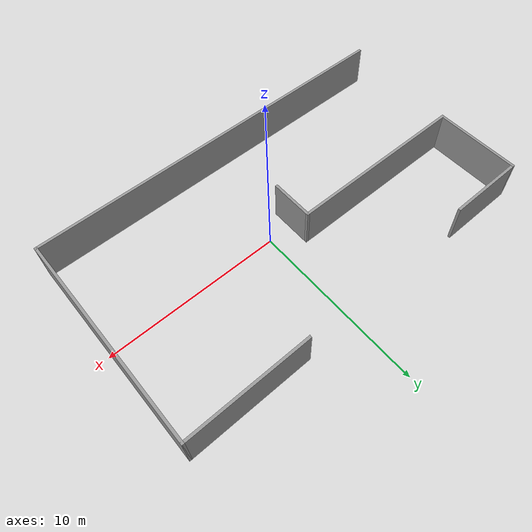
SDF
<?xml version='1.0'?>
<sdf version='1.7'>
  <model name='warehouse'>
    <pose>-1.25488 0.185557 0 0 -0 0</pose>
    <link name='Wall_0'>
      <collision name='Wall_0_Collision'>
        <geometry>
          <box>
            <size>2.5 0.15 2.5</size>
          </box>
        </geometry>
        <pose>0 0 1.25 0 -0 0</pose>
      </collision>
      <visual name='Wall_0_Visual'>
        <pose>0 0 1.25 0 -0 0</pose>
        <geometry>
          <box>
            <size>2.5 0.15 2.5</size>
          </box>
        </geometry>
        <material>
          <script>
            <uri>file://media/materials/scripts/gazebo.material</uri>
            <name>Gazebo/Grey</name>
          </script>
          <ambient>1 1 1 1</ambient>
        </material>
        <meta>
          <layer>0</layer>
        </meta>
      </visual>
      <pose>-0.218553 -0.103697 0 0 -0 1.5708</pose>
    </link>
    <link name='Wall_1'>
      <collision name='Wall_1_Collision'>
        <geometry>
          <box>
            <size>10.5 0.15 2.5</size>
          </box>
        </geometry>
        <pose>0 0 1.25 0 -0 0</pose>
      </collision>
      <visual name='Wall_1_Visual'>
        <pose>0 0 1.25 0 -0 0</pose>
        <geometry>
          <box>
            <size>10.5 0.15 2.5</size>
          </box>
        </geometry>
        <material>
          <script>
            <uri>file://media/materials/scripts/gazebo.material</uri>
            <name>Gazebo/Grey</name>
          </script>
          <ambient>1 1 1 1</ambient>
        </material>
        <meta>
          <layer>0</layer>
        </meta>
      </visual>
      <pose>-5.39355 1.0713 0 0 -0 3.14159</pose>
    </link>
    <link name='Wall_2'>
      <collision name='Wall_2_Collision'>
        <geometry>
          <box>
            <size>5 0.15 2.5</size>
          </box>
        </geometry>
        <pose>0 0 1.25 0 -0 0</pose>
      </collision>
      <visual name='Wall_2_Visual'>
        <pose>0 0 1.25 0 -0 0</pose>
        <geometry>
          <box>
            <size>5 0.15 2.5</size>
          </box>
        </geometry>
        <material>
          <script>
            <uri>file://media/materials/scripts/gazebo.material</uri>
            <name>Gazebo/Grey</name>
          </script>
          <ambient>1 1 1 1</ambient>
        </material>
        <meta>
          <layer>0</layer>
        </meta>
      </visual>
      <pose>-10.5686 3.4963 0 0 -0 1.5708</pose>
    </link>
    <link name='Wall_3'>
      <collision name='Wall_3_Collision'>
        <geometry>
          <box>
            <size>4.5 0.15 2.5</size>
          </box>
        </geometry>
        <pose>0 0 1.25 0 -0 0</pose>
      </collision>
      <visual name='Wall_3_Visual'>
        <pose>0 0 1.25 0 -0 0</pose>
        <geometry>
          <box>
            <size>4.5 0.15 2.5</size>
          </box>
        </geometry>
        <material>
          <script>
            <uri>file://media/materials/scripts/gazebo.material</uri>
            <name>Gazebo/Grey</name>
          </script>
          <ambient>1 1 1 1</ambient>
        </material>
        <meta>
          <layer>0</layer>
        </meta>
      </visual>
      <pose>-8.39355 5.9213 0 0 -0 0</pose>
    </link>
    <link name='Wall_5'>
      <collision name='Wall_5_Collision'>
        <geometry>
          <box>
            <size>7 0.15 2.5</size>
          </box>
        </geometry>
        <pose>0 0 1.25 0 -0 0</pose>
      </collision>
      <visual name='Wall_5_Visual'>
        <pose>0 0 1.25 0 -0 0</pose>
        <geometry>
          <box>
            <size>7 0.15 2.5</size>
          </box>
        </geometry>
        <material>
          <script>
            <uri>file://media/materials/scripts/gazebo.material</uri>
            <name>Gazebo/Grey</name>
          </script>
          <ambient>1 1 1 1</ambient>
        </material>
        <meta>
          <layer>0</layer>
        </meta>
      </visual>
      <pose>7.625 6.05 0 0 -0 0</pose>
    </link>
    <link name='Wall_6'>
      <collision name='Wall_6_Collision'>
        <geometry>
          <box>
            <size>12.25 0.15 2.5</size>
          </box>
        </geometry>
        <pose>0 0 1.25 0 -0 0</pose>
      </collision>
      <visual name='Wall_6_Visual'>
        <pose>0 0 1.25 0 -0 0</pose>
        <geometry>
          <box>
            <size>12.25 0.15 2.5</size>
          </box>
        </geometry>
        <material>
          <script>
            <uri>file://media/materials/scripts/gazebo.material</uri>
            <name>Gazebo/Grey</name>
          </script>
          <ambient>1 1 1 1</ambient>
        </material>
        <meta>
          <layer>0</layer>
        </meta>
      </visual>
      <pose>11.05 -0 0 0 -0 -1.5708</pose>
    </link>
    <link name='Wall_7'>
      <collision name='Wall_7_Collision'>
        <geometry>
          <box>
            <size>22.25 0.15 2.5</size>
          </box>
        </geometry>
        <pose>0 0 1.25 0 -0 0</pose>
      </collision>
      <visual name='Wall_7_Visual'>
        <pose>0 0 1.25 0 -0 0</pose>
        <geometry>
          <box>
            <size>22.25 0.15 2.5</size>
          </box>
        </geometry>
        <material>
          <script>
            <uri>file://media/materials/scripts/gazebo.material</uri>
            <name>Gazebo/Grey</name>
          </script>
          <ambient>1 1 1 1</ambient>
        </material>
        <meta>
          <layer>0</layer>
        </meta>
      </visual>
      <pose>-0 -6.05 0 0 -0 3.14159</pose>
    </link>
    <static>1</static>
  </model>
</sdf>
